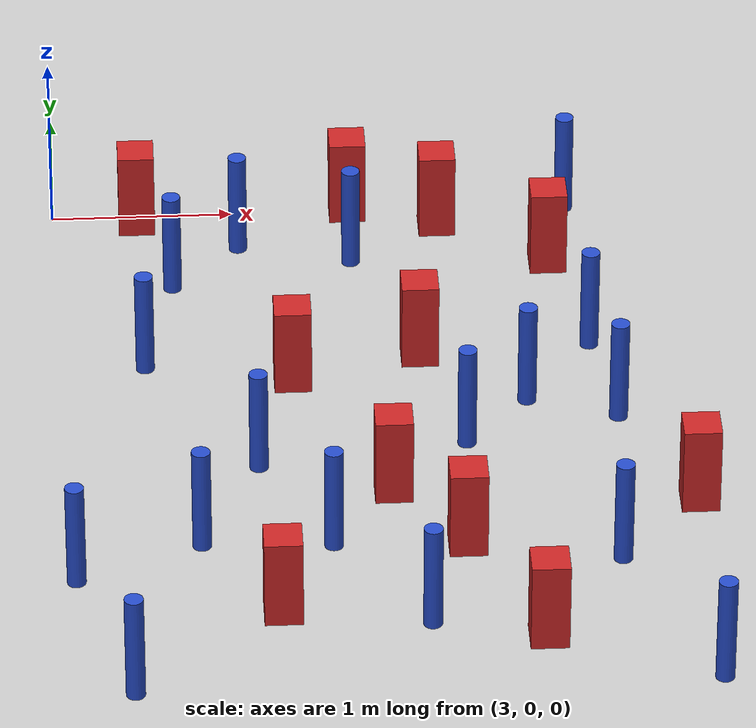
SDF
<sdf version="1.6">
 <world name="default">
  <model name="ground_plane">
   <static>1</static>
   <link name="link">
    <collision name="collision">
     <geometry><plane><normal>0 0 1</normal><size>100 100</size></plane></geometry>
     <surface><friction><ode><mu>100</mu><mu2>50</mu2></ode></friction></surface>
    </collision>
    <visual name="visual">
     <cast_shadows>0</cast_shadows>
     <geometry><plane><normal>0 0 1</normal><size>100 100</size></plane></geometry>
     <material>
      <ambient>1.0 1.0 1.0 1.0</ambient>
      <diffuse>0.8 0.8 0.8 1.0</diffuse>
      <specular>0.01 0.01 0.01 1.000000</specular>
     </material>
    </visual>
   </link>
  </model>
  <model name="pole_obstacle3">
   <static>true</static>
   <pose>4.90822632352 -3.87171259141 7.38925637345e-09 -8.47170692798e-08 1.24976764937e-08 -1.74513093023e-07</pose>
   <link name="link">
    <pose>0 0 0.3 0 -0 0</pose>
    <inertial>
     <mass>1</mass>
     <inertia><ixx>0.145833</ixx><ixy>0</ixy><ixz>0</ixz><iyy>0.145833</iyy><iyz>0</iyz><izz>0.125</izz></inertia>
    </inertial>
    <collision name="collision">
     <geometry><cylinder><radius>0.05</radius><length>.6</length></cylinder></geometry>
    </collision>
    <visual name="visual">
     <geometry><cylinder><radius>0.05</radius><length>.6</length></cylinder></geometry>
     <material>
      <script><name>Gazebo/Blue</name><uri>file://media/materials/scripts/gazebo.material</uri></script>
     </material>
    </visual>
   </link>
  </model>
  <model name="square_post_obstacle11">
   <static>true</static>
   <pose>4.64751890124 -0.0145843861051 1.91545236811e-07 -7.35059704564e-06 1.12565212e-07 2.39332434364e-05</pose>
   <link name="link">
    <pose>0 0 0.25 0 -0 0</pose>
    <inertial>
     <mass>100</mass>
     <inertia>
      <ixx>0.166667</ixx>
      <ixy>0</ixy>
      <ixz>0</ixz>
      <iyy>0.166667</iyy>
      <iyz>0</iyz>
      <izz>0.166667</izz>
     </inertia>
    </inertial>
    <collision name="collision"><geometry><box><size>.2 .2 .5</size></box></geometry></collision>
    <visual name="visual">
     <geometry><box><size>.2 .2 .5</size></box></geometry>
     <material>
      <script><name>Gazebo/Red</name><uri>file://media/materials/scripts/gazebo.material</uri></script>
     </material>
    </visual>
   </link>
  </model>
  <model name="pole_obstacle8">
   <static>true</static>
   <pose>5.52795941858 -1.89979225202 7.38925637345e-09 -8.471706928e-08 1.24976765134e-08 -1.74513093015e-07</pose>
   <link name="link">
    <pose>0 0 0.3 0 -0 0</pose>
    <inertial>
     <mass>1</mass>
     <inertia><ixx>0.145833</ixx><ixy>0</ixy><ixz>0</ixz><iyy>0.145833</iyy><iyz>0</iyz><izz>0.125</izz></inertia>
    </inertial>
    <collision name="collision">
     <geometry><cylinder><radius>0.05</radius><length>.6</length></cylinder></geometry>
    </collision>
    <visual name="visual">
     <geometry><cylinder><radius>0.05</radius><length>.6</length></cylinder></geometry>
     <material>
      <script><name>Gazebo/Blue</name><uri>file://media/materials/scripts/gazebo.material</uri></script>
     </material>
    </visual>
   </link>
  </model>
  <model name="square_post_obstacle40">
   <static>true</static>
   <pose>4.27733554913 -1.66524233601 1.91545236811e-07 -7.35059704564e-06 1.12565212e-07 2.39332434364e-05</pose>
   <link name="link">
    <pose>0 0 0.25 0 -0 0</pose>
    <inertial>
     <mass>100</mass>
     <inertia>
      <ixx>0.166667</ixx>
      <ixy>0</ixy>
      <ixz>0</ixz>
      <iyy>0.166667</iyy>
      <iyz>0</iyz>
      <izz>0.166667</izz>
     </inertia>
    </inertial>
    <collision name="collision"><geometry><box><size>.2 .2 .5</size></box></geometry></collision>
    <visual name="visual">
     <geometry><box><size>.2 .2 .5</size></box></geometry>
     <material>
      <script><name>Gazebo/Red</name><uri>file://media/materials/scripts/gazebo.material</uri></script>
     </material>
    </visual>
   </link>
  </model>
  <model name="square_post_obstacle45">
   <static>true</static>
   <pose>4.14560555239 -3.75059449753 1.91545236811e-07 -7.35059704564e-06 1.12565212e-07 2.39332434364e-05</pose>
   <link name="link">
    <pose>0 0 0.25 0 -0 0</pose>
    <inertial>
     <mass>100</mass>
     <inertia>
      <ixx>0.166667</ixx>
      <ixy>0</ixy>
      <ixz>0</ixz>
      <iyy>0.166667</iyy>
      <iyz>0</iyz>
      <izz>0.166667</izz>
     </inertia>
    </inertial>
    <collision name="collision"><geometry><box><size>.2 .2 .5</size></box></geometry></collision>
    <visual name="visual">
     <geometry><box><size>.2 .2 .5</size></box></geometry>
     <material>
      <script><name>Gazebo/Red</name><uri>file://media/materials/scripts/gazebo.material</uri></script>
     </material>
    </visual>
   </link>
  </model>
  <model name="pole_obstacle68">
   <static>true</static>
   <pose>5.928359118 -3.35960280752 7.38925637345e-09 -8.47170692798e-08 1.24976764937e-08 -1.74513093023e-07</pose>
   <link name="link">
    <pose>0 0 0.3 0 -0 0</pose>
    <inertial>
     <mass>1</mass>
     <inertia><ixx>0.145833</ixx><ixy>0</ixy><ixz>0</ixz><iyy>0.145833</iyy><iyz>0</iyz><izz>0.125</izz></inertia>
    </inertial>
    <collision name="collision">
     <geometry><cylinder><radius>0.05</radius><length>.6</length></cylinder></geometry>
    </collision>
    <visual name="visual">
     <geometry><cylinder><radius>0.05</radius><length>.6</length></cylinder></geometry>
     <material>
      <script><name>Gazebo/Blue</name><uri>file://media/materials/scripts/gazebo.material</uri></script>
     </material>
    </visual>
   </link>
  </model>
  <model name="pole_obstacle74">
   <static>true</static>
   <pose>5.18159181039 -2.28237882683 7.38925637345e-09 -8.47170692798e-08 1.24976764937e-08 -1.74513093023e-07</pose>
   <link name="link">
    <pose>0 0 0.3 0 -0 0</pose>
    <inertial>
     <mass>1</mass>
     <inertia><ixx>0.145833</ixx><ixy>0</ixy><ixz>0</ixz><iyy>0.145833</iyy><iyz>0</iyz><izz>0.125</izz></inertia>
    </inertial>
    <collision name="collision">
     <geometry><cylinder><radius>0.05</radius><length>.6</length></cylinder></geometry>
    </collision>
    <visual name="visual">
     <geometry><cylinder><radius>0.05</radius><length>.6</length></cylinder></geometry>
     <material>
      <script><name>Gazebo/Blue</name><uri>file://media/materials/scripts/gazebo.material</uri></script>
     </material>
    </visual>
   </link>
  </model>
  <model name="pole_obstacle91">
   <static>true</static>
   <pose>3.08897060125 -3.4264201279 7.38925637345e-09 -8.47170692798e-08 1.24976764939e-08 -1.74513093025e-07</pose>
   <link name="link">
    <pose>0 0 0.3 0 -0 0</pose>
    <inertial>
     <mass>1</mass>
     <inertia><ixx>0.145833</ixx><ixy>0</ixy><ixz>0</ixz><iyy>0.145833</iyy><iyz>0</iyz><izz>0.125</izz></inertia>
    </inertial>
    <collision name="collision">
     <geometry><cylinder><radius>0.05</radius><length>.6</length></cylinder></geometry>
    </collision>
    <visual name="visual">
     <geometry><cylinder><radius>0.05</radius><length>.6</length></cylinder></geometry>
     <material>
      <script><name>Gazebo/Blue</name><uri>file://media/materials/scripts/gazebo.material</uri></script>
     </material>
    </visual>
   </link>
  </model>
  <model name="pole_obstacle94">
   <static>true</static>
   <pose>4.02632593985 -0.349782025373 7.38925637345e-09 -8.47170692792e-08 1.24976764416e-08 -1.74513093042e-07</pose>
   <link name="link">
    <pose>0 0 0.3 0 -0 0</pose>
    <inertial>
     <mass>1</mass>
     <inertia><ixx>0.145833</ixx><ixy>0</ixy><ixz>0</ixz><iyy>0.145833</iyy><iyz>0</iyz><izz>0.125</izz></inertia>
    </inertial>
    <collision name="collision">
     <geometry><cylinder><radius>0.05</radius><length>.6</length></cylinder></geometry>
    </collision>
    <visual name="visual">
     <geometry><cylinder><radius>0.05</radius><length>.6</length></cylinder></geometry>
     <material>
      <script><name>Gazebo/Blue</name><uri>file://media/materials/scripts/gazebo.material</uri></script>
     </material>
    </visual>
   </link>
  </model>
  <model name="square_post_obstacle87">
   <static>true</static>
   <pose>6.36985261778 -2.86816911384 1.91545236811e-07 -7.35059704564e-06 1.12565212e-07 2.39332434364e-05</pose>
   <link name="link">
    <pose>0 0 0.25 0 -0 0</pose>
    <inertial>
     <mass>100</mass>
     <inertia>
      <ixx>0.166667</ixx>
      <ixy>0</ixy>
      <ixz>0</ixz>
      <iyy>0.166667</iyy>
      <iyz>0</iyz>
      <izz>0.166667</izz>
     </inertia>
    </inertial>
    <collision name="collision"><geometry><box><size>.2 .2 .5</size></box></geometry></collision>
    <visual name="visual">
     <geometry><box><size>.2 .2 .5</size></box></geometry>
     <material>
      <script><name>Gazebo/Red</name><uri>file://media/materials/scripts/gazebo.material</uri></script>
     </material>
    </visual>
   </link>
  </model>
  <model name="pole_obstacle108">
   <static>true</static>
   <pose>6.00695831589 -2.0761797639 7.38925637345e-09 -8.47170692798e-08 1.24976764937e-08 -1.74513093023e-07</pose>
   <link name="link">
    <pose>0 0 0.3 0 -0 0</pose>
    <inertial>
     <mass>1</mass>
     <inertia><ixx>0.145833</ixx><ixy>0</ixy><ixz>0</ixz><iyy>0.145833</iyy><iyz>0</iyz><izz>0.125</izz></inertia>
    </inertial>
    <collision name="collision">
     <geometry><cylinder><radius>0.05</radius><length>.6</length></cylinder></geometry>
    </collision>
    <visual name="visual">
     <geometry><cylinder><radius>0.05</radius><length>.6</length></cylinder></geometry>
     <material>
      <script><name>Gazebo/Blue</name><uri>file://media/materials/scripts/gazebo.material</uri></script>
     </material>
    </visual>
   </link>
  </model>
  <model name="square_post_obstacle101">
   <static>true</static>
   <pose>5.49275221703 -4.01679119291 1.91545236811e-07 -7.35059704564e-06 1.12565212e-07 2.39332434364e-05</pose>
   <link name="link">
    <pose>0 0 0.25 0 -0 0</pose>
    <inertial>
     <mass>100</mass>
     <inertia>
      <ixx>0.166667</ixx>
      <ixy>0</ixy>
      <ixz>0</ixz>
      <iyy>0.166667</iyy>
      <iyz>0</iyz>
      <izz>0.166667</izz>
     </inertia>
    </inertial>
    <collision name="collision"><geometry><box><size>.2 .2 .5</size></box></geometry></collision>
    <visual name="visual">
     <geometry><box><size>.2 .2 .5</size></box></geometry>
     <material>
      <script><name>Gazebo/Red</name><uri>file://media/materials/scripts/gazebo.material</uri></script>
     </material>
    </visual>
   </link>
  </model>
  <model name="square_post_obstacle104">
   <static>true</static>
   <pose>4.97347921836 -1.45697879544 1.91545236811e-07 -7.35059704564e-06 1.12565212e-07 2.39332434364e-05</pose>
   <link name="link">
    <pose>0 0 0.25 0 -0 0</pose>
    <inertial>
     <mass>100</mass>
     <inertia>
      <ixx>0.166667</ixx>
      <ixy>0</ixy>
      <ixz>0</ixz>
      <iyy>0.166667</iyy>
      <iyz>0</iyz>
      <izz>0.166667</izz>
     </inertia>
    </inertial>
    <collision name="collision"><geometry><box><size>.2 .2 .5</size></box></geometry></collision>
    <visual name="visual">
     <geometry><box><size>.2 .2 .5</size></box></geometry>
     <material>
      <script><name>Gazebo/Red</name><uri>file://media/materials/scripts/gazebo.material</uri></script>
     </material>
    </visual>
   </link>
  </model>
  <model name="square_post_obstacle106">
   <static>true</static>
   <pose>5.13841010977 -0.178420614641 1.91545236811e-07 -7.35059704564e-06 1.12565212e-07 2.39332434364e-05</pose>
   <link name="link">
    <pose>0 0 0.25 0 -0 0</pose>
    <inertial>
     <mass>100</mass>
     <inertia>
      <ixx>0.166667</ixx>
      <ixy>0</ixy>
      <ixz>0</ixz>
      <iyy>0.166667</iyy>
      <iyz>0</iyz>
      <izz>0.166667</izz>
     </inertia>
    </inertial>
    <collision name="collision"><geometry><box><size>.2 .2 .5</size></box></geometry></collision>
    <visual name="visual">
     <geometry><box><size>.2 .2 .5</size></box></geometry>
     <material>
      <script><name>Gazebo/Red</name><uri>file://media/materials/scripts/gazebo.material</uri></script>
     </material>
    </visual>
   </link>
  </model>
  <model name="pole_obstacle124">
   <static>true</static>
   <pose>4.43274681626 -3.17035054952 7.38925637345e-09 -8.47170692798e-08 1.24976764937e-08 -1.74513093023e-07</pose>
   <link name="link">
    <pose>0 0 0.3 0 -0 0</pose>
    <inertial>
     <mass>1</mass>
     <inertia><ixx>0.145833</ixx><ixy>0</ixy><ixz>0</ixz><iyy>0.145833</iyy><iyz>0</iyz><izz>0.125</izz></inertia>
    </inertial>
    <collision name="collision">
     <geometry><cylinder><radius>0.05</radius><length>.6</length></cylinder></geometry>
    </collision>
    <visual name="visual">
     <geometry><cylinder><radius>0.05</radius><length>.6</length></cylinder></geometry>
     <material>
      <script><name>Gazebo/Blue</name><uri>file://media/materials/scripts/gazebo.material</uri></script>
     </material>
    </visual>
   </link>
  </model>
  <model name="pole_obstacle125">
   <static>true</static>
   <pose>4.64521914244 -0.515159359949 7.38925637345e-09 -8.47170692798e-08 1.24976765005e-08 -1.74513093021e-07</pose>
   <link name="link">
    <pose>0 0 0.3 0 -0 0</pose>
    <inertial>
     <mass>1</mass>
     <inertia><ixx>0.145833</ixx><ixy>0</ixy><ixz>0</ixz><iyy>0.145833</iyy><iyz>0</iyz><izz>0.125</izz></inertia>
    </inertial>
    <collision name="collision">
     <geometry><cylinder><radius>0.05</radius><length>.6</length></cylinder></geometry>
    </collision>
    <visual name="visual">
     <geometry><cylinder><radius>0.05</radius><length>.6</length></cylinder></geometry>
     <material>
      <script><name>Gazebo/Blue</name><uri>file://media/materials/scripts/gazebo.material</uri></script>
     </material>
    </visual>
   </link>
  </model>
  <model name="pole_obstacle132">
   <static>true</static>
   <pose>3.37410075446 -4.39498521521 7.38925637345e-09 -8.47170692798e-08 1.24976765033e-08 -1.74513093019e-07</pose>
   <link name="link">
    <pose>0 0 0.3 0 -0 0</pose>
    <inertial>
     <mass>1</mass>
     <inertia><ixx>0.145833</ixx><ixy>0</ixy><ixz>0</ixz><iyy>0.145833</iyy><iyz>0</iyz><izz>0.125</izz></inertia>
    </inertial>
    <collision name="collision">
     <geometry><cylinder><radius>0.05</radius><length>.6</length></cylinder></geometry>
    </collision>
    <visual name="visual">
     <geometry><cylinder><radius>0.05</radius><length>.6</length></cylinder></geometry>
     <material>
      <script><name>Gazebo/Blue</name><uri>file://media/materials/scripts/gazebo.material</uri></script>
     </material>
    </visual>
   </link>
  </model>
  <model name="square_post_obstacle116">
   <static>true</static>
   <pose>3.46991024344 -0.0904244772992 1.91545236811e-07 -7.35059704564e-06 1.12565212e-07 2.39332434364e-05</pose>
   <link name="link">
    <pose>0 0 0.25 0 -0 0</pose>
    <inertial>
     <mass>100</mass>
     <inertia>
      <ixx>0.166667</ixx>
      <ixy>0</ixy>
      <ixz>0</ixz>
      <iyy>0.166667</iyy>
      <iyz>0</iyz>
      <izz>0.166667</izz>
     </inertia>
    </inertial>
    <collision name="collision"><geometry><box><size>.2 .2 .5</size></box></geometry></collision>
    <visual name="visual">
     <geometry><box><size>.2 .2 .5</size></box></geometry>
     <material>
      <script><name>Gazebo/Red</name><uri>file://media/materials/scripts/gazebo.material</uri></script>
     </material>
    </visual>
   </link>
  </model>
  <model name="pole_obstacle141">
   <static>true</static>
   <pose>4.06763421903 -2.45037013403 7.38925637345e-09 -8.47170692798e-08 1.24976764937e-08 -1.74513093023e-07</pose>
   <link name="link">
    <pose>0 0 0.3 0 -0 0</pose>
    <inertial>
     <mass>1</mass>
     <inertia><ixx>0.145833</ixx><ixy>0</ixy><ixz>0</ixz><iyy>0.145833</iyy><iyz>0</iyz><izz>0.125</izz></inertia>
    </inertial>
    <collision name="collision">
     <geometry><cylinder><radius>0.05</radius><length>.6</length></cylinder></geometry>
    </collision>
    <visual name="visual">
     <geometry><cylinder><radius>0.05</radius><length>.6</length></cylinder></geometry>
     <material>
      <script><name>Gazebo/Blue</name><uri>file://media/materials/scripts/gazebo.material</uri></script>
     </material>
    </visual>
   </link>
  </model>
  <model name="pole_obstacle144">
   <static>true</static>
   <pose>3.48645597654 -1.50092338647 7.38925637345e-09 -8.471706928e-08 1.24976765152e-08 -1.74513093012e-07</pose>
   <link name="link">
    <pose>0 0 0.3 0 -0 0</pose>
    <inertial>
     <mass>1</mass>
     <inertia><ixx>0.145833</ixx><ixy>0</ixy><ixz>0</ixz><iyy>0.145833</iyy><iyz>0</iyz><izz>0.125</izz></inertia>
    </inertial>
    <collision name="collision">
     <geometry><cylinder><radius>0.05</radius><length>.6</length></cylinder></geometry>
    </collision>
    <visual name="visual">
     <geometry><cylinder><radius>0.05</radius><length>.6</length></cylinder></geometry>
     <material>
      <script><name>Gazebo/Blue</name><uri>file://media/materials/scripts/gazebo.material</uri></script>
     </material>
    </visual>
   </link>
  </model>
  <model name="pole_obstacle156">
   <static>true</static>
   <pose>6.36084520379 -4.39524114554 7.38925637345e-09 -8.47170692796e-08 1.24976764786e-08 -1.74513093032e-07</pose>
   <link name="link">
    <pose>0 0 0.3 0 -0 0</pose>
    <inertial>
     <mass>1</mass>
     <inertia><ixx>0.145833</ixx><ixy>0</ixy><ixz>0</ixz><iyy>0.145833</iyy><iyz>0</iyz><izz>0.125</izz></inertia>
    </inertial>
    <collision name="collision">
     <geometry><cylinder><radius>0.05</radius><length>.6</length></cylinder></geometry>
    </collision>
    <visual name="visual">
     <geometry><cylinder><radius>0.05</radius><length>.6</length></cylinder></geometry>
     <material>
      <script><name>Gazebo/Blue</name><uri>file://media/materials/scripts/gazebo.material</uri></script>
     </material>
    </visual>
   </link>
  </model>
  <model name="pole_obstacle161">
   <static>true</static>
   <pose>3.74624879769 -3.14005579431 7.38925637345e-09 -8.47170692798e-08 1.24976764939e-08 -1.74513093025e-07</pose>
   <link name="link">
    <pose>0 0 0.3 0 -0 0</pose>
    <inertial>
     <mass>1</mass>
     <inertia><ixx>0.145833</ixx><ixy>0</ixy><ixz>0</ixz><iyy>0.145833</iyy><iyz>0</iyz><izz>0.125</izz></inertia>
    </inertial>
    <collision name="collision">
     <geometry><cylinder><radius>0.05</radius><length>.6</length></cylinder></geometry>
    </collision>
    <visual name="visual">
     <geometry><cylinder><radius>0.05</radius><length>.6</length></cylinder></geometry>
     <material>
      <script><name>Gazebo/Blue</name><uri>file://media/materials/scripts/gazebo.material</uri></script>
     </material>
    </visual>
   </link>
  </model>
  <model name="pole_obstacle168">
   <static>true</static>
   <pose>3.65381656985 -0.728703131612 7.38925637345e-09 -8.471706928e-08 1.24976765177e-08 -1.74513093012e-07</pose>
   <link name="link">
    <pose>0 0 0.3 0 -0 0</pose>
    <inertial>
     <mass>1</mass>
     <inertia><ixx>0.145833</ixx><ixy>0</ixy><ixz>0</ixz><iyy>0.145833</iyy><iyz>0</iyz><izz>0.125</izz></inertia>
    </inertial>
    <collision name="collision">
     <geometry><cylinder><radius>0.05</radius><length>.6</length></cylinder></geometry>
    </collision>
    <visual name="visual">
     <geometry><cylinder><radius>0.05</radius><length>.6</length></cylinder></geometry>
     <material>
      <script><name>Gazebo/Blue</name><uri>file://media/materials/scripts/gazebo.material</uri></script>
     </material>
    </visual>
   </link>
  </model>
  <model name="square_post_obstacle161">
   <static>true</static>
   <pose>5.73077555269 -0.581668759927 1.91545236811e-07 -7.35059704564e-06 1.12565212e-07 2.39332434364e-05</pose>
   <link name="link">
    <pose>0 0 0.25 0 -0 0</pose>
    <inertial>
     <mass>100</mass>
     <inertia>
      <ixx>0.166667</ixx>
      <ixy>0</ixy>
      <ixz>0</ixz>
      <iyy>0.166667</iyy>
      <iyz>0</iyz>
      <izz>0.166667</izz>
     </inertia>
    </inertial>
    <collision name="collision"><geometry><box><size>.2 .2 .5</size></box></geometry></collision>
    <visual name="visual">
     <geometry><box><size>.2 .2 .5</size></box></geometry>
     <material>
      <script><name>Gazebo/Red</name><uri>file://media/materials/scripts/gazebo.material</uri></script>
     </material>
    </visual>
   </link>
  </model>
  <model name="pole_obstacle174">
   <static>true</static>
   <pose>5.9019736337 -1.38723684792 7.38925637345e-09 -8.471706928e-08 1.24976765134e-08 -1.74513093015e-07</pose>
   <link name="link">
    <pose>0 0 0.3 0 -0 0</pose>
    <inertial>
     <mass>1</mass>
     <inertia><ixx>0.145833</ixx><ixy>0</ixy><ixz>0</ixz><iyy>0.145833</iyy><iyz>0</iyz><izz>0.125</izz></inertia>
    </inertial>
    <collision name="collision">
     <geometry><cylinder><radius>0.05</radius><length>.6</length></cylinder></geometry>
    </collision>
    <visual name="visual">
     <geometry><cylinder><radius>0.05</radius><length>.6</length></cylinder></geometry>
     <material>
      <script><name>Gazebo/Blue</name><uri>file://media/materials/scripts/gazebo.material</uri></script>
     </material>
    </visual>
   </link>
  </model>
  <model name="square_post_obstacle190">
   <static>true</static>
   <pose>5.12858224642 -3.20269170492 1.91545236811e-07 -7.35059704564e-06 1.12565212e-07 2.39332434364e-05</pose>
   <link name="link">
    <pose>0 0 0.25 0 -0 0</pose>
    <inertial>
     <mass>100</mass>
     <inertia>
      <ixx>0.166667</ixx>
      <ixy>0</ixy>
      <ixz>0</ixz>
      <iyy>0.166667</iyy>
      <iyz>0</iyz>
      <izz>0.166667</izz>
     </inertia>
    </inertial>
    <collision name="collision"><geometry><box><size>.2 .2 .5</size></box></geometry></collision>
    <visual name="visual">
     <geometry><box><size>.2 .2 .5</size></box></geometry>
     <material>
      <script><name>Gazebo/Red</name><uri>file://media/materials/scripts/gazebo.material</uri></script>
     </material>
    </visual>
   </link>
  </model>
  <model name="square_post_obstacle192">
   <static>true</static>
   <pose>4.76688922472 -2.70876689273 1.91545236811e-07 -7.35059704564e-06 1.12565212e-07 2.39332434364e-05</pose>
   <link name="link">
    <pose>0 0 0.25 0 -0 0</pose>
    <inertial>
     <mass>100</mass>
     <inertia>
      <ixx>0.166667</ixx>
      <ixy>0</ixy>
      <ixz>0</ixz>
      <iyy>0.166667</iyy>
      <iyz>0</iyz>
      <izz>0.166667</izz>
     </inertia>
    </inertial>
    <collision name="collision"><geometry><box><size>.2 .2 .5</size></box></geometry></collision>
    <visual name="visual">
     <geometry><box><size>.2 .2 .5</size></box></geometry>
     <material>
      <script><name>Gazebo/Red</name><uri>file://media/materials/scripts/gazebo.material</uri></script>
     </material>
    </visual>
   </link>
  </model>
  <model name="pole_obstacle205">
   <static>true</static>
   <pose>5.86086660895 -0.0271742772173 7.38925637345e-09 -8.47170692799e-08 1.24976764994e-08 -1.74513093022e-07</pose>
   <link name="link">
    <pose>0 0 0.3 0 -0 0</pose>
    <inertial>
     <mass>1</mass>
     <inertia><ixx>0.145833</ixx><ixy>0</ixy><ixz>0</ixz><iyy>0.145833</iyy><iyz>0</iyz><izz>0.125</izz></inertia>
    </inertial>
    <collision name="collision">
     <geometry><cylinder><radius>0.05</radius><length>.6</length></cylinder></geometry>
    </collision>
    <visual name="visual">
     <geometry><cylinder><radius>0.05</radius><length>.6</length></cylinder></geometry>
     <material>
      <script><name>Gazebo/Blue</name><uri>file://media/materials/scripts/gazebo.material</uri></script>
     </material>
    </visual>
   </link>
  </model>
 </world>
</sdf>
